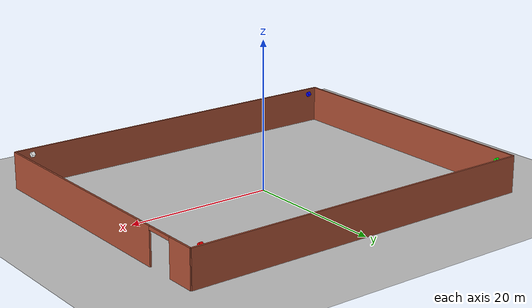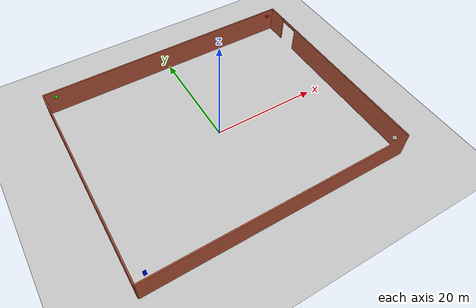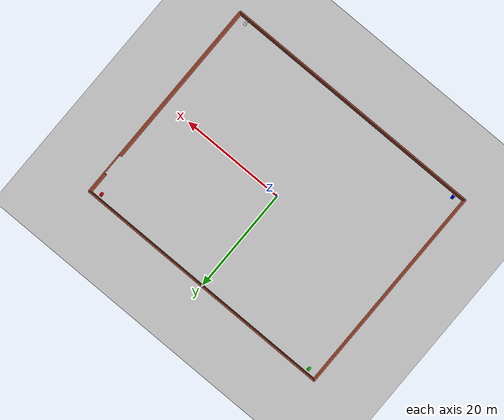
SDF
<sdf version="1.6">
 <world name="default">
  <plugin name="gazebo_ros_init" filename="libgazebo_ros_init.so">
   <ros><namespace>/</namespace><argument>use_sim_time:=true</argument></ros>
  </plugin>
  <plugin name="factory" filename="libgazebo_ros_factory.so"/>
  <include><uri>model://ground_plane</uri></include>
  <include><uri>model://sun</uri></include>
  <scene><shadows>false</shadows></scene>
  <physics type="ode">
   <real_time_update_rate>1000.0</real_time_update_rate>
   <max_step_size>0.001</max_step_size>
   <real_time_factor>1</real_time_factor>
   <ode>
    <solver>
     <type>quick</type>
     <iters>150</iters>
     <precon_iters>0</precon_iters>
     <sor>1.400000</sor>
     <use_dynamic_moi_rescaling>1</use_dynamic_moi_rescaling>
    </solver>
    <constraints>
     <cfm>0.00001</cfm>
     <erp>0.2</erp>
     <contact_max_correcting_vel>2000.000000</contact_max_correcting_vel>
     <contact_surface_layer>0.01000</contact_surface_layer>
    </constraints>
   </ode>
  </physics>
  <model name="warehouse_walls">
   <static>1</static>
   <link name="north_wall">
    <pose>25.0 0.0 0.0 0 0 0.0</pose>
    <visual name="north_wall_visual1">
     <pose>0.0 18.0 2.5 0.0 0.0 0.0</pose>
     <geometry><box><size>0.25 4.0 5.0</size></box></geometry>
     <material>
      <script><uri>file://media/materials/scripts/gazebo.material</uri><name>Gazebo/Bricks</name></script>
      <ambient>1 1 1 1</ambient>
      <diffuse>1 1 1 1</diffuse>
      <specular>0.2 0.2 0.2 1</specular>
      <emissive>0 0 0 1</emissive>
     </material>
    </visual>
    <visual name="north_wall_visual2">
     <pose>0.0 14.0 4.75 0.0 0.0 0.0</pose>
     <geometry><box><size>0.25 4.0 0.5</size></box></geometry>
     <material>
      <script><uri>file://media/materials/scripts/gazebo.material</uri><name>Gazebo/Bricks</name></script>
      <ambient>1 1 1 1</ambient>
      <diffuse>1 1 1 1</diffuse>
      <specular>0.2 0.2 0.2 1</specular>
      <emissive>0 0 0 1</emissive>
     </material>
    </visual>
    <visual name="north_wall_visual3">
     <pose>0.0 -4.0 2.5 0.0 0 0</pose>
     <geometry><box><size>0.25 32.0 5.0</size></box></geometry>
     <material>
      <script><uri>file://media/materials/scripts/gazebo.material</uri><name>Gazebo/Bricks</name></script>
      <ambient>1 1 1 1</ambient>
      <diffuse>1 1 1 1</diffuse>
      <specular>0.2 0.2 0.2 1</specular>
      <emissive>0 0 0 1</emissive>
     </material>
    </visual>
    <collision name="north_wall_collision1">
     <pose>0.0 18.0 2.5 0.0 0.0 0.0</pose>
     <geometry><box><size>0.25 4.0 5.0</size></box></geometry>
     <surface>
      <friction>
       <ode><mu>1</mu><mu2>1</mu2><fdir1>0 0 0</fdir1><slip1>0</slip1><slip2>0</slip2></ode>
       <torsional>
        <coefficient>1</coefficient>
        <patch_radius>0</patch_radius>
        <surface_radius>0</surface_radius>
        <use_patch_radius>1</use_patch_radius>
        <ode><slip>0</slip></ode>
       </torsional>
      </friction>
      <bounce><restitution_coefficient>0</restitution_coefficient><threshold>1e+06</threshold></bounce>
      <contact>
       <collide_without_contact>0</collide_without_contact>
       <collide_without_contact_bitmask>1</collide_without_contact_bitmask>
       <collide_bitmask>1</collide_bitmask>
       <ode>
        <soft_cfm>0</soft_cfm>
        <soft_erp>0.2</soft_erp>
        <kp>1e+13</kp>
        <kd>1</kd>
        <max_vel>0.01</max_vel>
        <min_depth>0</min_depth>
       </ode>
       <bullet>
        <split_impulse>1</split_impulse>
        <split_impulse_penetration_threshold>-0.01</split_impulse_penetration_threshold>
        <soft_cfm>0</soft_cfm>
        <soft_erp>0.2</soft_erp>
        <kp>1e+13</kp>
        <kd>1</kd>
       </bullet>
      </contact>
     </surface>
    </collision>
    <collision name="north_wall_collision2">
     <pose>0.0 14.0 4.75 0.0 0.0 0.0</pose>
     <geometry><box><size>0.25 4.0 0.5</size></box></geometry>
     <surface>
      <friction>
       <ode><mu>1</mu><mu2>1</mu2><fdir1>0 0 0</fdir1><slip1>0</slip1><slip2>0</slip2></ode>
       <torsional>
        <coefficient>1</coefficient>
        <patch_radius>0</patch_radius>
        <surface_radius>0</surface_radius>
        <use_patch_radius>1</use_patch_radius>
        <ode><slip>0</slip></ode>
       </torsional>
      </friction>
      <bounce><restitution_coefficient>0</restitution_coefficient><threshold>1e+06</threshold></bounce>
      <contact>
       <collide_without_contact>0</collide_without_contact>
       <collide_without_contact_bitmask>1</collide_without_contact_bitmask>
       <collide_bitmask>1</collide_bitmask>
       <ode>
        <soft_cfm>0</soft_cfm>
        <soft_erp>0.2</soft_erp>
        <kp>1e+13</kp>
        <kd>1</kd>
        <max_vel>0.01</max_vel>
        <min_depth>0</min_depth>
       </ode>
       <bullet>
        <split_impulse>1</split_impulse>
        <split_impulse_penetration_threshold>-0.01</split_impulse_penetration_threshold>
        <soft_cfm>0</soft_cfm>
        <soft_erp>0.2</soft_erp>
        <kp>1e+13</kp>
        <kd>1</kd>
       </bullet>
      </contact>
     </surface>
    </collision>
    <collision name="north_wall_collision3">
     <pose>0.0 -4.0 2.5 0.0 0 0</pose>
     <geometry><box><size>0.25 32.0 5.0</size></box></geometry>
     <surface>
      <friction>
       <ode><mu>1</mu><mu2>1</mu2><fdir1>0 0 0</fdir1><slip1>0</slip1><slip2>0</slip2></ode>
       <torsional>
        <coefficient>1</coefficient>
        <patch_radius>0</patch_radius>
        <surface_radius>0</surface_radius>
        <use_patch_radius>1</use_patch_radius>
        <ode><slip>0</slip></ode>
       </torsional>
      </friction>
      <bounce><restitution_coefficient>0</restitution_coefficient><threshold>1e+06</threshold></bounce>
      <contact>
       <collide_without_contact>0</collide_without_contact>
       <collide_without_contact_bitmask>1</collide_without_contact_bitmask>
       <collide_bitmask>1</collide_bitmask>
       <ode>
        <soft_cfm>0</soft_cfm>
        <soft_erp>0.2</soft_erp>
        <kp>1e+13</kp>
        <kd>1</kd>
        <max_vel>0.01</max_vel>
        <min_depth>0</min_depth>
       </ode>
       <bullet>
        <split_impulse>1</split_impulse>
        <split_impulse_penetration_threshold>-0.01</split_impulse_penetration_threshold>
        <soft_cfm>0</soft_cfm>
        <soft_erp>0.2</soft_erp>
        <kp>1e+13</kp>
        <kd>1</kd>
       </bullet>
      </contact>
     </surface>
    </collision>
   </link>
   <link name="east_wall">
    <visual name="east_wall_visual">
     <pose>0.0 -20.0 2.5 0.0 0.0 0.0</pose>
     <geometry><box><size>50.0 0.25 5.0</size></box></geometry>
     <material>
      <script><uri>file://media/materials/scripts/gazebo.material</uri><name>Gazebo/Bricks</name></script>
      <ambient>1 1 1 1</ambient>
      <diffuse>1 1 1 1</diffuse>
      <specular>0.2 0.2 0.2 1</specular>
      <emissive>0 0 0 1</emissive>
     </material>
    </visual>
    <collision name="east_wall_collision">
     <pose>0.0 -20.0 2.5 0.0 0.0 0.0</pose>
     <geometry><box><size>50.0 0.25 5.0</size></box></geometry>
     <surface>
      <friction>
       <ode><mu>1</mu><mu2>1</mu2><fdir1>0 0 0</fdir1><slip1>0</slip1><slip2>0</slip2></ode>
       <torsional>
        <coefficient>1</coefficient>
        <patch_radius>0</patch_radius>
        <surface_radius>0</surface_radius>
        <use_patch_radius>1</use_patch_radius>
        <ode><slip>0</slip></ode>
       </torsional>
      </friction>
      <bounce><restitution_coefficient>0</restitution_coefficient><threshold>1e+06</threshold></bounce>
      <contact>
       <collide_without_contact>0</collide_without_contact>
       <collide_without_contact_bitmask>1</collide_without_contact_bitmask>
       <collide_bitmask>1</collide_bitmask>
       <ode>
        <soft_cfm>0</soft_cfm>
        <soft_erp>0.2</soft_erp>
        <kp>1e+13</kp>
        <kd>1</kd>
        <max_vel>0.01</max_vel>
        <min_depth>0</min_depth>
       </ode>
       <bullet>
        <split_impulse>1</split_impulse>
        <split_impulse_penetration_threshold>-0.01</split_impulse_penetration_threshold>
        <soft_cfm>0</soft_cfm>
        <soft_erp>0.2</soft_erp>
        <kp>1e+13</kp>
        <kd>1</kd>
       </bullet>
      </contact>
     </surface>
    </collision>
   </link>
   <link name="west_wall">
    <visual name="west_wall_visual">
     <pose>0.0 20.0 2.5 0.0 0.0 0.0</pose>
     <geometry><box><size>50.0 0.25 5.0</size></box></geometry>
     <material>
      <script><uri>file://media/materials/scripts/gazebo.material</uri><name>Gazebo/Bricks</name></script>
      <ambient>1 1 1 1</ambient>
      <diffuse>1 1 1 1</diffuse>
      <specular>0.2 0.2 0.2 1</specular>
      <emissive>0 0 0 1</emissive>
     </material>
    </visual>
    <collision name="west_wall_collision">
     <pose>0.0 20.0 2.5 0.0 0.0 0.0</pose>
     <geometry><box><size>50.0 0.25 5.0</size></box></geometry>
     <surface>
      <friction>
       <ode><mu>1</mu><mu2>1</mu2><fdir1>0 0 0</fdir1><slip1>0</slip1><slip2>0</slip2></ode>
       <torsional>
        <coefficient>1</coefficient>
        <patch_radius>0</patch_radius>
        <surface_radius>0</surface_radius>
        <use_patch_radius>1</use_patch_radius>
        <ode><slip>0</slip></ode>
       </torsional>
      </friction>
      <bounce><restitution_coefficient>0</restitution_coefficient><threshold>1e+06</threshold></bounce>
      <contact>
       <collide_without_contact>0</collide_without_contact>
       <collide_without_contact_bitmask>1</collide_without_contact_bitmask>
       <collide_bitmask>1</collide_bitmask>
       <ode>
        <soft_cfm>0</soft_cfm>
        <soft_erp>0.2</soft_erp>
        <kp>1e+13</kp>
        <kd>1</kd>
        <max_vel>0.01</max_vel>
        <min_depth>0</min_depth>
       </ode>
       <bullet>
        <split_impulse>1</split_impulse>
        <split_impulse_penetration_threshold>-0.01</split_impulse_penetration_threshold>
        <soft_cfm>0</soft_cfm>
        <soft_erp>0.2</soft_erp>
        <kp>1e+13</kp>
        <kd>1</kd>
       </bullet>
      </contact>
     </surface>
    </collision>
   </link>
   <link name="south_wall">
    <visual name="south_wall_visual">
     <pose>-25.0 0.0 2.5 0.0 0.0 0.0</pose>
     <geometry><box><size>0.25 40.0 5.0</size></box></geometry>
     <material>
      <script><uri>file://media/materials/scripts/gazebo.material</uri><name>Gazebo/Bricks</name></script>
      <ambient>1 1 1 1</ambient>
      <diffuse>1 1 1 1</diffuse>
      <specular>0.2 0.2 0.2 1</specular>
      <emissive>0 0 0 1</emissive>
     </material>
    </visual>
    <collision name="south_wall_collision">
     <pose>-25.0 0.0 2.5 0.0 0.0 0.0</pose>
     <geometry><box><size>0.25 40.0 5.0</size></box></geometry>
     <surface>
      <friction>
       <ode><mu>1</mu><mu2>1</mu2><fdir1>0 0 0</fdir1><slip1>0</slip1><slip2>0</slip2></ode>
       <torsional>
        <coefficient>1</coefficient>
        <patch_radius>0</patch_radius>
        <surface_radius>0</surface_radius>
        <use_patch_radius>1</use_patch_radius>
        <ode><slip>0</slip></ode>
       </torsional>
      </friction>
      <bounce><restitution_coefficient>0</restitution_coefficient><threshold>1e+06</threshold></bounce>
      <contact>
       <collide_without_contact>0</collide_without_contact>
       <collide_without_contact_bitmask>1</collide_without_contact_bitmask>
       <collide_bitmask>1</collide_bitmask>
       <ode>
        <soft_cfm>0</soft_cfm>
        <soft_erp>0.2</soft_erp>
        <kp>1e+13</kp>
        <kd>1</kd>
        <max_vel>0.01</max_vel>
        <min_depth>0</min_depth>
       </ode>
       <bullet>
        <split_impulse>1</split_impulse>
        <split_impulse_penetration_threshold>-0.01</split_impulse_penetration_threshold>
        <soft_cfm>0</soft_cfm>
        <soft_erp>0.2</soft_erp>
        <kp>1e+13</kp>
        <kd>1</kd>
       </bullet>
      </contact>
     </surface>
    </collision>
   </link>
  </model>
  <model name="camera1">
   <pose>23.0 19.0 4.5 0.0 0.75 -1.570796</pose>
   <static>1</static>
   <link name="camera1_link">
    <visual name="camera1_visual">
     <geometry><box><size>0.5 0.5 0.5</size></box></geometry>
     <material><ambient>1 0 0 1</ambient><diffuse>1 0 0 1</diffuse></material>
    </visual>
    <sensor name="camera1" type="camera">
     <camera>
      <horizontal_fov>1.047</horizontal_fov>
      <image><width>640</width><height>480</height><format>R8G8B8</format></image>
      <clip><near>0.1</near><far>100</far></clip>
     </camera>
     <always_on>1</always_on>
     <update_rate>30</update_rate>
     <visualize>true</visualize>
     <plugin name="camera1_controller" filename="libgazebo_ros_camera.so">
      <ros><namespace>/camera1</namespace></ros>
      <camera_name>camera1</camera_name>
      <frame_name>camera1_link</frame_name>
     </plugin>
    </sensor>
   </link>
  </model>
  <model name="camera2">
   <pose>-23.0 19.0 4.5 0.0 0.75 -1.570796</pose>
   <static>1</static>
   <link name="camera2_link">
    <visual name="camera2_visual">
     <geometry><box><size>0.5 0.5 0.5</size></box></geometry>
     <material><ambient>0 1 0 1</ambient><diffuse>0 1 0 1</diffuse></material>
    </visual>
    <sensor name="camera2" type="camera">
     <camera>
      <horizontal_fov>1.047</horizontal_fov>
      <image><width>640</width><height>480</height><format>R8G8B8</format></image>
      <clip><near>0.1</near><far>100</far></clip>
     </camera>
     <always_on>1</always_on>
     <update_rate>30</update_rate>
     <visualize>true</visualize>
     <plugin name="camera2_controller" filename="libgazebo_ros_camera.so">
      <ros><namespace>/camera2</namespace></ros>
      <camera_name>camera2</camera_name>
      <frame_name>camera2_link</frame_name>
     </plugin>
    </sensor>
   </link>
  </model>
  <model name="camera3">
   <pose>-23.0 -19.0 4.5 0.0 0.75 1.570796</pose>
   <static>1</static>
   <link name="camera3_link">
    <visual name="camera3_visual">
     <geometry><box><size>0.5 0.5 0.5</size></box></geometry>
     <material><ambient>0 0 1 1</ambient><diffuse>0 0 1 1</diffuse></material>
    </visual>
    <sensor name="camera3" type="camera">
     <camera>
      <horizontal_fov>1.047</horizontal_fov>
      <image><width>640</width><height>480</height><format>R8G8B8</format></image>
      <clip><near>0.1</near><far>100</far></clip>
     </camera>
     <always_on>1</always_on>
     <update_rate>30</update_rate>
     <visualize>true</visualize>
     <plugin name="camera3_controller" filename="libgazebo_ros_camera.so">
      <ros><namespace>/camera3</namespace></ros>
      <camera_name>camera3</camera_name>
      <frame_name>camera3_link</frame_name>
     </plugin>
    </sensor>
   </link>
  </model>
  <model name="camera4">
   <pose>23.0 -19.0 4.5 0.0 0.75 1.570796</pose>
   <static>1</static>
   <link name="camera4_link">
    <visual name="camera4_visual">
     <geometry><box><size>0.5 0.5 0.5</size></box></geometry>
     <material><ambient>1 1 1 1</ambient><diffuse>1 1 1 1</diffuse></material>
    </visual>
    <sensor name="camera4" type="camera">
     <camera>
      <horizontal_fov>1.047</horizontal_fov>
      <image><width>640</width><height>480</height><format>R8G8B8</format></image>
      <clip><near>0.1</near><far>100</far></clip>
     </camera>
     <always_on>1</always_on>
     <update_rate>30</update_rate>
     <visualize>true</visualize>
     <plugin name="camera4_controller" filename="libgazebo_ros_camera.so">
      <ros><namespace>/camera4</namespace></ros>
      <camera_name>camera4</camera_name>
      <frame_name>camera4_link</frame_name>
     </plugin>
    </sensor>
   </link>
  </model>
 </world>
</sdf>
